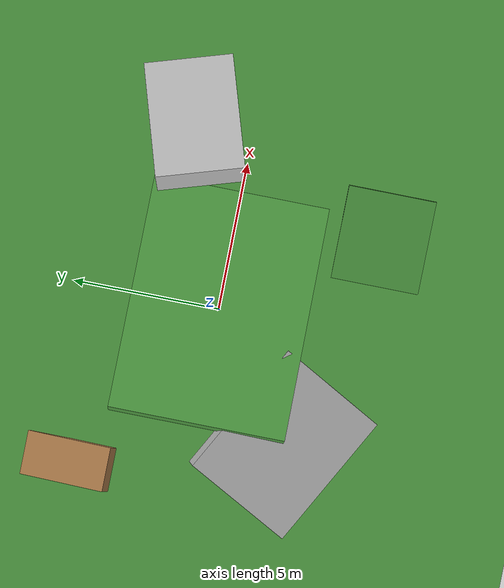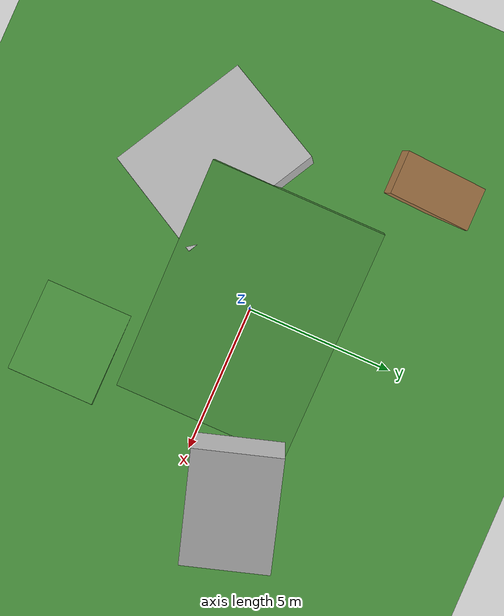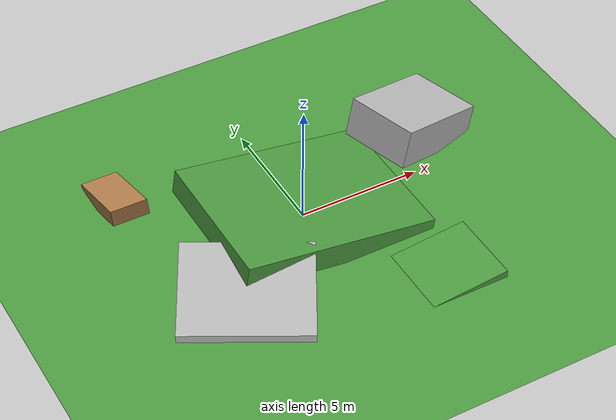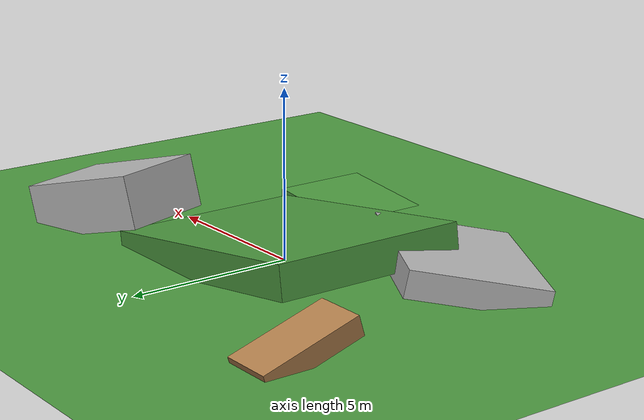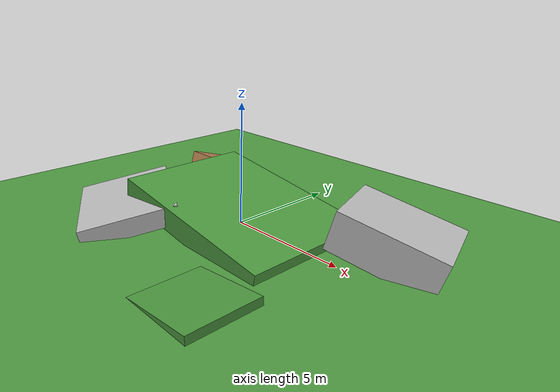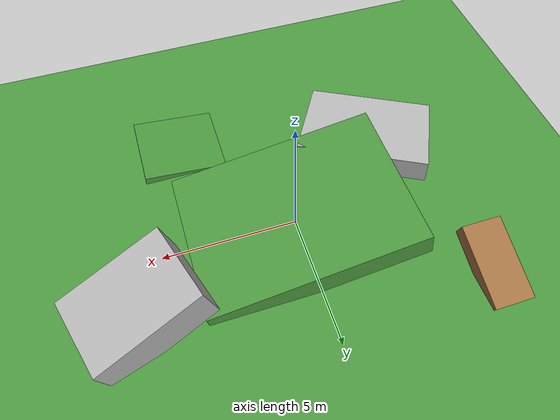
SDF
<?xml version="1.0" ?>
<sdf version="1.6">
  <world name="slope_terrain">

    <!-- Physics settings -->
    <physics name="1ms" type="ignore">
      <max_step_size>0.001</max_step_size>
      <real_time_factor>1.0</real_time_factor>
    </physics>

    <!-- Lighting -->
    <light type="directional" name="sun">
      <cast_shadows>true</cast_shadows>
      <pose>0 0 10 0 0 0</pose>
      <diffuse>0.8 0.8 0.8 1</diffuse>
      <specular>0.2 0.2 0.2 1</specular>
      <attenuation>
        <range>1000</range>
        <constant>0.9</constant>
        <linear>0.01</linear>
        <quadratic>0.001</quadratic>
      </attenuation>
      <direction>-0.5 0.1 -0.9</direction>
    </light>

    <!-- Base ground plane -->
    <model name="ground_plane">
      <static>true</static>
      <link name="link">
        <collision name="collision">
          <geometry>
            <plane>
              <normal>0 0 1</normal>
              <size>100 100</size>
            </plane>
          </geometry>
          <surface>
            <contact>
              <collide_bitmask>65535</collide_bitmask>
              <ode>
                <mu>1.0</mu>
                <mu2>1.0</mu2>
              </ode>
            </contact>
            <friction>
              <ode>
                <mu>1.0</mu>
                <mu2>1.0</mu2>
              </ode>
            </friction>
          </surface>
        </collision>
        <visual name="visual">
          <cast_shadows>false</cast_shadows>
          <geometry>
            <plane>
              <normal>0 0 1</normal>
              <size>100 100</size>
            </plane>
          </geometry>
          <material>
            <script>
              <uri>file://media/materials/scripts/gazebo.material</uri>
              <name>Gazebo/Grass</name>
            </script>
          </material>
        </visual>
      </link>
    </model>

    <!-- Gentle slope -->
    <model name="slope_1">
      <static>true</static>
      <pose>0 0 0.5 0 0.15 0</pose>
      <link name="link">
        <collision name="collision">
          <geometry>
            <box>
              <size>8 6 1</size>
            </box>
          </geometry>
          <surface>
            <contact>
              <ode>
                <mu>1.0</mu>
                <mu2>1.0</mu2>
              </ode>
            </contact>
            <friction>
              <ode>
                <mu>1.0</mu>
                <mu2>1.0</mu2>
              </ode>
            </friction>
          </surface>
        </collision>
        <visual name="visual">
          <geometry>
            <box>
              <size>8 6 1</size>
            </box>
          </geometry>
          <material>
            <script>
              <uri>file://media/materials/scripts/gazebo.material</uri>
              <name>Gazebo/Grass</name>
            </script>
          </material>
        </visual>
      </link>
    </model>

    <!-- Steeper slope -->
    <model name="slope_2">
      <static>true</static>
      <pose>6 2 0.8 0 0.25 0.3</pose>
      <link name="link">
        <collision name="collision">
          <geometry>
            <box>
              <size>4 3 1.6</size>
            </box>
          </geometry>
          <surface>
            <contact>
              <ode>
                <mu>1.2</mu>
                <mu2>1.2</mu2>
              </ode>
            </contact>
            <friction>
              <ode>
                <mu>1.2</mu>
                <mu2>1.2</mu2>
              </ode>
            </friction>
          </surface>
        </collision>
        <visual name="visual">
          <geometry>
            <box>
              <size>4 3 1.6</size>
            </box>
          </geometry>
          <material>
            <script>
              <uri>file://media/materials/scripts/gazebo.material</uri>
              <name>Gazebo/Rocky</name>
            </script>
          </material>
        </visual>
      </link>
    </model>

    <!-- Side slope -->
    <model name="slope_3">
      <static>true</static>
      <pose>-4 -3 0.4 0.2 0 -0.5</pose>
      <link name="link">
        <collision name="collision">
          <geometry>
            <box>
              <size>5 4 0.8</size>
            </box>
          </geometry>
          <surface>
            <contact>
              <ode>
                <mu>1.1</mu>
                <mu2>1.1</mu2>
              </ode>
            </contact>
            <friction>
              <ode>
                <mu>1.1</mu>
                <mu2>1.1</mu2>
              </ode>
            </friction>
          </surface>
        </collision>
        <visual name="visual">
          <geometry>
            <box>
              <size>5 4 0.8</size>
            </box>
          </geometry>
          <material>
            <script>
              <uri>file://media/materials/scripts/gazebo.material</uri>
              <name>Gazebo/Dirt</name>
            </script>
          </material>
        </visual>
      </link>
    </model>

    <!-- Ramp for testing -->
    <model name="test_ramp">
      <static>true</static>
      <pose>-6 4 0.3 0 0.3 1.57</pose>
      <link name="link">
        <collision name="collision">
          <geometry>
            <box>
              <size>3 1.5 0.6</size>
            </box>
          </geometry>
          <surface>
            <contact>
              <ode>
                <mu>1.3</mu>
                <mu2>1.3</mu2>
              </ode>
            </contact>
            <friction>
              <ode>
                <mu>1.3</mu>
                <mu2>1.3</mu2>
              </ode>
            </friction>
          </surface>
        </collision>
        <visual name="visual">
          <geometry>
            <box>
              <size>3 1.5 0.6</size>
            </box>
          </geometry>
          <material>
            <script>
              <uri>file://media/materials/scripts/gazebo.material</uri>
              <name>Gazebo/Wood</name>
            </script>
          </material>
        </visual>
      </link>
    </model>

    <!-- Valley -->
    <model name="valley">
      <static>true</static>
      <pose>2 -5 -0.3 0 -0.1 0</pose>
      <link name="link">
        <collision name="collision">
          <geometry>
            <box>
              <size>6 3 0.6</size>
            </box>
          </geometry>
          <surface>
            <contact>
              <ode>
                <mu>0.9</mu>
                <mu2>0.9</mu2>
              </ode>
            </contact>
            <friction>
              <ode>
                <mu>0.9</mu>
                <mu2>0.9</mu2>
              </ode>
            </friction>
          </surface>
        </collision>
        <visual name="visual">
          <geometry>
            <box>
              <size>6 3 0.6</size>
            </box>
          </geometry>
          <material>
            <script>
              <uri>file://media/materials/scripts/gazebo.material</uri>
              <name>Gazebo/Grass</name>
            </script>
          </material>
        </visual>
      </link>
    </model>

    <!-- Camera for observation -->
    <gui fullscreen='0'>
      <camera name='user_camera'>
        <pose>-10 -8 8 0 0.5 0.8</pose>
        <view_controller>orbit</view_controller>
        <projection_type>perspective</projection_type>
      </camera>
    </gui>

  </world>
</sdf>
